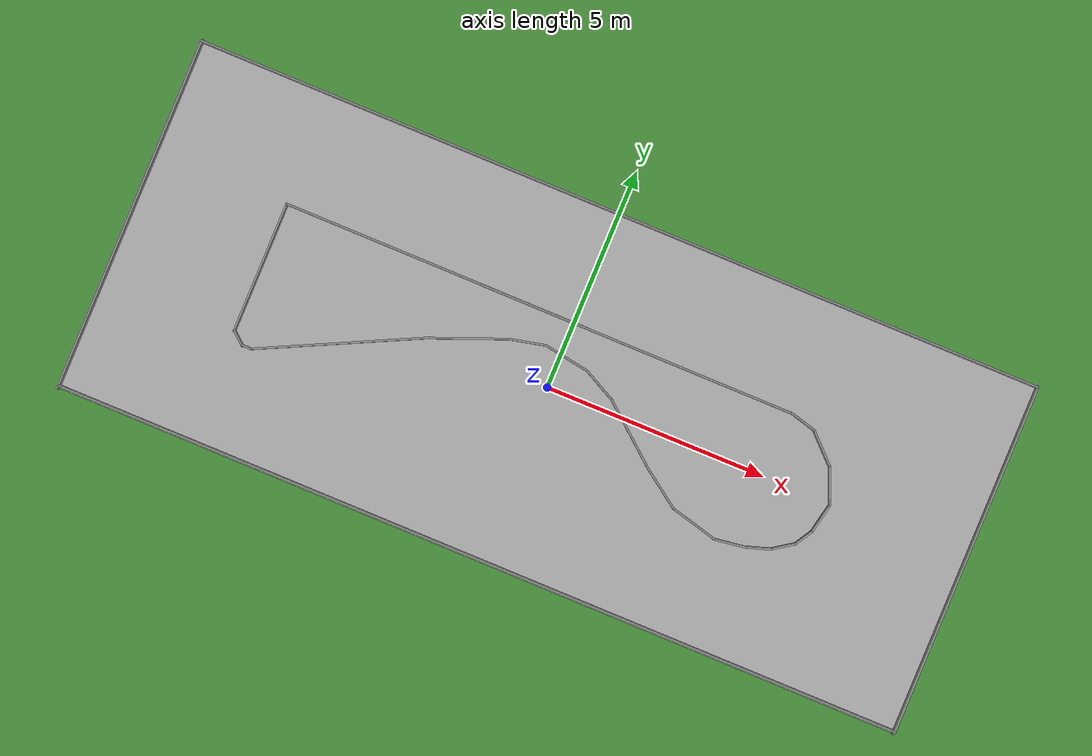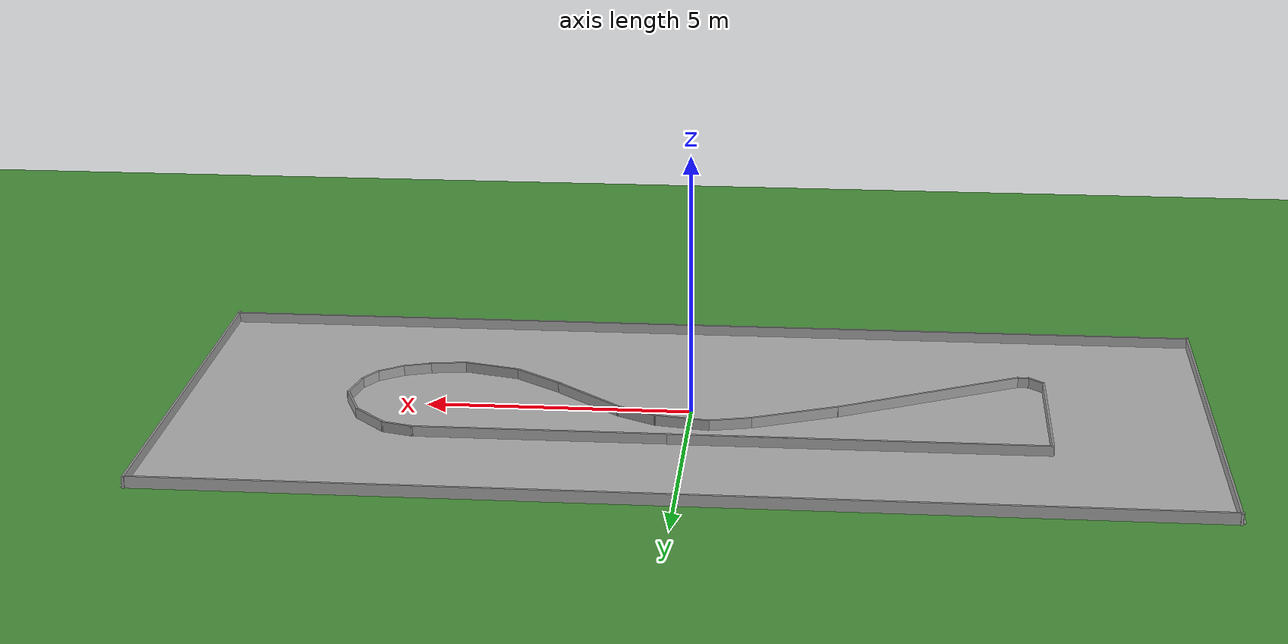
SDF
<sdf version="1.5">
 <world name="default">
  <light name="sun" type="directional">
   <cast_shadows>0</cast_shadows>
   <pose>0 0 10 0 -0 0</pose>
   <diffuse>0.8 0.8 0.8 1</diffuse>
   <specular>0.2 0.2 0.2 1</specular>
   <attenuation>
    <range>1000</range>
    <constant>0.9</constant>
    <linear>0.01</linear>
    <quadratic>0.001</quadratic>
   </attenuation>
   <direction>-0.5 0.1 -0.9</direction>
  </light>
  <scene>
   <sky><clouds><speed>1</speed></clouds></sky>
   <ambient>0.4 0.4 0.4 1</ambient>
   <background>0.7 0.7 0.7 1</background>
   <shadows>1</shadows>
  </scene>
  <physics name="default_physics" default="0" type="ode">
   <real_time_update_rate>1000</real_time_update_rate>
   <ode>
    <solver>
     <type>quick</type>
     <iters>70</iters>
     <sor>1.3</sor>
     <use_dynamic_moi_rescaling>0</use_dynamic_moi_rescaling>
    </solver>
    <constraints>
     <cfm>0</cfm>
     <erp>0.2</erp>
     <contact_max_correcting_vel>100</contact_max_correcting_vel>
     <contact_surface_layer>0.001</contact_surface_layer>
    </constraints>
   </ode>
   <max_step_size>0.001</max_step_size>
   <real_time_factor>1</real_time_factor>
  </physics>
  <scene><ambient>0.4 0.4 0.4 1</ambient><background>0.7 0.7 0.7 1</background><shadows>1</shadows></scene>
  <spherical_coordinates>
   <surface_model>EARTH_WGS84</surface_model>
   <latitude_deg>0</latitude_deg>
   <longitude_deg>0</longitude_deg>
   <elevation>0</elevation>
   <heading_deg>0</heading_deg>
  </spherical_coordinates>
  <model name="ground_grass">
   <static>1</static>
   <link name="ground_grass">
    <collision name="collision">
     <geometry><plane><normal>0 0 1</normal><size>50 50</size></plane></geometry>
     <surface><friction><ode><mu>100</mu><mu2>50</mu2></ode></friction></surface>
    </collision>
    <visual name="visual_ground">
     <cast_shadows>0</cast_shadows>
     <pose>0 0 0.005 0 -0 0</pose>
     <geometry><plane><normal>0 0 1</normal><size>50 50</size></plane></geometry>
     <material>
      <script>
       <uri>model://ground_grass/materials/scripts</uri>
       <uri>model://ground_grass/materials/textures</uri>
       <name>Floor/Grass</name>
      </script>
     </material>
    </visual>
    <velocity_decay><linear>0</linear><angular>0</angular></velocity_decay>
   </link>
  </model>
  <model name="ucsd_track_v1">
   <static>1</static>
   <link name="link_track">
    <collision name="collision">
     <geometry><plane><normal>0 0 1</normal><size>19.431 8.0264</size></plane></geometry>
     <surface><friction><ode><mu>100</mu><mu2>50</mu2></ode></friction></surface>
    </collision>
    <visual name="visual_ground">
     <cast_shadows>0</cast_shadows>
     <pose>0 0 0.005 0 -0 0</pose>
     <geometry><plane><normal>0 0 1</normal><size>19.431 8.0264</size></plane></geometry>
     <material>
      <script>
       <uri>model://ucsd_track_v1/materials/scripts</uri>
       <uri>model://ucsd_track_v1/materials/textures</uri>
       <name>Floor/Image</name>
      </script>
     </material>
    </visual>
    <velocity_decay><linear>0</linear><angular>0</angular></velocity_decay>
   </link>
   <pose>0 0 0.001 0 -0 0</pose>
  </model>
  <gravity>0 0 -9.8</gravity>
  <magnetic_field>6e-06 2.3e-05 -4.2e-05</magnetic_field>
  <atmosphere type="adiabatic"/>
  <model name="grey_wall_3">
   <link name="link">
    <pose>0.713484 -0.011654 1.4 0 -0 0</pose>
    <inertial>
     <inertia><ixx>nan</ixx><ixy>0</ixy><ixz>0</ixz><iyy>nan</iyy><iyz>0</iyz><izz>nan</izz></inertia>
     <mass>0</mass>
    </inertial>
    <visual name="visual">
     <cast_shadows>0</cast_shadows>
     <geometry><box><size>19.3332 0.043266 0.226147</size></box></geometry>
     <material>
      <script>
       <uri>model://grey_wall/materials/scripts</uri>
       <uri>model://grey_wall/materials/textures</uri>
       <name>vrc/grey_wall</name>
      </script>
      <ambient>1 1 1 1</ambient>
      <diffuse>1 1 1 1</diffuse>
      <specular>0 0 0 1</specular>
      <emissive>0 0 0 1</emissive>
     </material>
    </visual>
    <collision name="collision">
     <geometry><box><size>19.3332 0.043266 0.226147</size></box></geometry>
     <surface>
      <friction>
       <ode><mu>1</mu><mu2>1</mu2><fdir1>0 0 0</fdir1><slip1>0</slip1><slip2>0</slip2></ode>
       <torsional>
        <coefficient>1</coefficient>
        <patch_radius>0</patch_radius>
        <surface_radius>0</surface_radius>
        <use_patch_radius>1</use_patch_radius>
        <ode><slip>0</slip></ode>
       </torsional>
      </friction>
      <bounce><restitution_coefficient>0</restitution_coefficient><threshold>1e+06</threshold></bounce>
      <contact>
       <collide_without_contact>0</collide_without_contact>
       <collide_without_contact_bitmask>1</collide_without_contact_bitmask>
       <collide_bitmask>1</collide_bitmask>
       <ode>
        <soft_cfm>0</soft_cfm>
        <soft_erp>0.2</soft_erp>
        <kp>1e+13</kp>
        <kd>1</kd>
        <max_vel>0.01</max_vel>
        <min_depth>0</min_depth>
       </ode>
       <bullet>
        <split_impulse>1</split_impulse>
        <split_impulse_penetration_threshold>-0.01</split_impulse_penetration_threshold>
        <soft_cfm>0</soft_cfm>
        <soft_erp>0.2</soft_erp>
        <kp>1e+13</kp>
        <kd>1</kd>
       </bullet>
      </contact>
     </surface>
    </collision>
   </link>
   <static>1</static>
   <pose>-0.716038 4.0109 -1.30508 0 -0 0</pose>
  </model>
  <model name="grey_wall_4">
   <link name="link">
    <pose>0.713484 -0.011654 1.4 0 -0 0</pose>
    <inertial>
     <inertia><ixx>nan</ixx><ixy>0</ixy><ixz>0</ixz><iyy>nan</iyy><iyz>0</iyz><izz>nan</izz></inertia>
     <mass>0</mass>
    </inertial>
    <visual name="visual">
     <cast_shadows>0</cast_shadows>
     <geometry><box><size>19.3332 0.043266 0.226147</size></box></geometry>
     <material>
      <script>
       <uri>model://grey_wall/materials/scripts</uri>
       <uri>model://grey_wall/materials/textures</uri>
       <name>vrc/grey_wall</name>
      </script>
      <ambient>1 1 1 1</ambient>
      <diffuse>1 1 1 1</diffuse>
      <specular>0 0 0 1</specular>
      <emissive>0 0 0 1</emissive>
     </material>
    </visual>
    <collision name="collision">
     <geometry><box><size>19.3332 0.043266 0.226147</size></box></geometry>
     <surface>
      <friction>
       <ode><mu>1</mu><mu2>1</mu2><fdir1>0 0 0</fdir1><slip1>0</slip1><slip2>0</slip2></ode>
       <torsional>
        <coefficient>1</coefficient>
        <patch_radius>0</patch_radius>
        <surface_radius>0</surface_radius>
        <use_patch_radius>1</use_patch_radius>
        <ode><slip>0</slip></ode>
       </torsional>
      </friction>
      <bounce><restitution_coefficient>0</restitution_coefficient><threshold>1e+06</threshold></bounce>
      <contact>
       <collide_without_contact>0</collide_without_contact>
       <collide_without_contact_bitmask>1</collide_without_contact_bitmask>
       <collide_bitmask>1</collide_bitmask>
       <ode>
        <soft_cfm>0</soft_cfm>
        <soft_erp>0.2</soft_erp>
        <kp>1e+13</kp>
        <kd>1</kd>
        <max_vel>0.01</max_vel>
        <min_depth>0</min_depth>
       </ode>
       <bullet>
        <split_impulse>1</split_impulse>
        <split_impulse_penetration_threshold>-0.01</split_impulse_penetration_threshold>
        <soft_cfm>0</soft_cfm>
        <soft_erp>0.2</soft_erp>
        <kp>1e+13</kp>
        <kd>1</kd>
       </bullet>
      </contact>
     </surface>
    </collision>
   </link>
   <static>1</static>
   <pose>-0.701966 -3.93959 -1.30508 0 -0 0</pose>
  </model>
  <model name="grey_wall_5">
   <link name="link">
    <pose>-0.467859 -0.097477 1.4 0 -0 0.009516</pose>
    <inertial>
     <inertia><ixx>nan</ixx><ixy>0</ixy><ixz>0</ixz><iyy>nan</iyy><iyz>0</iyz><izz>nan</izz></inertia>
     <mass>0</mass>
    </inertial>
    <visual name="visual">
     <cast_shadows>0</cast_shadows>
     <geometry><box><size>8.07319 0.043266 0.226147</size></box></geometry>
     <material>
      <script>
       <uri>model://grey_wall/materials/scripts</uri>
       <uri>model://grey_wall/materials/textures</uri>
       <name>vrc/grey_wall</name>
      </script>
      <ambient>1 1 1 1</ambient>
      <diffuse>1 1 1 1</diffuse>
      <specular>0 0 0 1</specular>
      <emissive>0 0 0 1</emissive>
     </material>
    </visual>
    <collision name="collision">
     <geometry><box><size>8.07319 0.043266 0.226147</size></box></geometry>
     <surface>
      <friction>
       <ode><mu>1</mu><mu2>1</mu2><fdir1>0 0 0</fdir1><slip1>0</slip1><slip2>0</slip2></ode>
       <torsional>
        <coefficient>1</coefficient>
        <patch_radius>0</patch_radius>
        <surface_radius>0</surface_radius>
        <use_patch_radius>1</use_patch_radius>
        <ode><slip>0</slip></ode>
       </torsional>
      </friction>
      <bounce><restitution_coefficient>0</restitution_coefficient><threshold>1e+06</threshold></bounce>
      <contact>
       <collide_without_contact>0</collide_without_contact>
       <collide_without_contact_bitmask>1</collide_without_contact_bitmask>
       <collide_bitmask>1</collide_bitmask>
       <ode>
        <soft_cfm>0</soft_cfm>
        <soft_erp>0.2</soft_erp>
        <kp>1e+13</kp>
        <kd>1</kd>
        <max_vel>0.01</max_vel>
        <min_depth>0</min_depth>
       </ode>
       <bullet>
        <split_impulse>1</split_impulse>
        <split_impulse_penetration_threshold>-0.01</split_impulse_penetration_threshold>
        <soft_cfm>0</soft_cfm>
        <soft_erp>0.2</soft_erp>
        <kp>1e+13</kp>
        <kd>1</kd>
       </bullet>
      </contact>
     </surface>
    </collision>
   </link>
   <static>1</static>
   <pose>-9.73387 0.474906 -1.30963 0 -0 1.55954</pose>
  </model>
  <model name="grey_wall_6">
   <link name="link">
    <pose>-0.467859 -0.097477 1.4 0 -0 0.009516</pose>
    <inertial>
     <inertia><ixx>nan</ixx><ixy>0</ixy><ixz>0</ixz><iyy>nan</iyy><iyz>0</iyz><izz>nan</izz></inertia>
     <mass>0</mass>
    </inertial>
    <visual name="visual">
     <cast_shadows>0</cast_shadows>
     <geometry><box><size>8.07319 0.043266 0.226147</size></box></geometry>
     <material>
      <script>
       <uri>model://grey_wall/materials/scripts</uri>
       <uri>model://grey_wall/materials/textures</uri>
       <name>vrc/grey_wall</name>
      </script>
      <ambient>1 1 1 1</ambient>
      <diffuse>1 1 1 1</diffuse>
      <specular>0 0 0 1</specular>
      <emissive>0 0 0 1</emissive>
     </material>
    </visual>
    <collision name="collision">
     <geometry><box><size>8.07319 0.043266 0.226147</size></box></geometry>
     <surface>
      <friction>
       <ode><mu>1</mu><mu2>1</mu2><fdir1>0 0 0</fdir1><slip1>0</slip1><slip2>0</slip2></ode>
       <torsional>
        <coefficient>1</coefficient>
        <patch_radius>0</patch_radius>
        <surface_radius>0</surface_radius>
        <use_patch_radius>1</use_patch_radius>
        <ode><slip>0</slip></ode>
       </torsional>
      </friction>
      <bounce><restitution_coefficient>0</restitution_coefficient><threshold>1e+06</threshold></bounce>
      <contact>
       <collide_without_contact>0</collide_without_contact>
       <collide_without_contact_bitmask>1</collide_without_contact_bitmask>
       <collide_bitmask>1</collide_bitmask>
       <ode>
        <soft_cfm>0</soft_cfm>
        <soft_erp>0.2</soft_erp>
        <kp>1e+13</kp>
        <kd>1</kd>
        <max_vel>0.01</max_vel>
        <min_depth>0</min_depth>
       </ode>
       <bullet>
        <split_impulse>1</split_impulse>
        <split_impulse_penetration_threshold>-0.01</split_impulse_penetration_threshold>
        <soft_cfm>0</soft_cfm>
        <soft_erp>0.2</soft_erp>
        <kp>1e+13</kp>
        <kd>1</kd>
       </bullet>
      </contact>
     </surface>
    </collision>
   </link>
   <static>1</static>
   <pose>9.55959 0.474995 -1.30963 0 -0 1.55954</pose>
  </model>
  <model name="grey_wall_30_0">
   <link name="link">
    <pose>0.244121 0.290643 1.4 0 0 -0.161294</pose>
    <inertial>
     <inertia><ixx>nan</ixx><ixy>0</ixy><ixz>0</ixz><iyy>nan</iyy><iyz>0</iyz><izz>nan</izz></inertia>
     <mass>0</mass>
    </inertial>
    <visual name="visual">
     <cast_shadows>0</cast_shadows>
     <geometry><box><size>1.0471 0.043266 0.226147</size></box></geometry>
     <material>
      <script>
       <uri>model://grey_wall/materials/scripts</uri>
       <uri>model://grey_wall/materials/textures</uri>
       <name>vrc/grey_wall</name>
      </script>
      <ambient>1 1 1 1</ambient>
      <diffuse>1 1 1 1</diffuse>
      <specular>0 0 0 1</specular>
      <emissive>0 0 0 1</emissive>
     </material>
    </visual>
    <collision name="collision">
     <geometry><box><size>1.0471 0.043266 0.226147</size></box></geometry>
     <surface>
      <friction>
       <ode><mu>1</mu><mu2>1</mu2><fdir1>0 0 0</fdir1><slip1>0</slip1><slip2>0</slip2></ode>
       <torsional>
        <coefficient>1</coefficient>
        <patch_radius>0</patch_radius>
        <surface_radius>0</surface_radius>
        <use_patch_radius>1</use_patch_radius>
        <ode><slip>0</slip></ode>
       </torsional>
      </friction>
      <bounce><restitution_coefficient>0</restitution_coefficient><threshold>1e+06</threshold></bounce>
      <contact>
       <collide_without_contact>0</collide_without_contact>
       <collide_without_contact_bitmask>1</collide_without_contact_bitmask>
       <collide_bitmask>1</collide_bitmask>
       <ode>
        <soft_cfm>0</soft_cfm>
        <soft_erp>0.2</soft_erp>
        <kp>1e+13</kp>
        <kd>1</kd>
        <max_vel>0.01</max_vel>
        <min_depth>0</min_depth>
       </ode>
       <bullet>
        <split_impulse>1</split_impulse>
        <split_impulse_penetration_threshold>-0.01</split_impulse_penetration_threshold>
        <soft_cfm>0</soft_cfm>
        <soft_erp>0.2</soft_erp>
        <kp>1e+13</kp>
        <kd>1</kd>
       </bullet>
      </contact>
     </surface>
    </collision>
   </link>
   <static>1</static>
   <pose>-0.114316 0.442475 -1.30539 0 -0 0</pose>
  </model>
  <model name="grey_wall_t_26">
   <link name="link">
    <pose>0.75561 0.477652 1.4 0 -0 0.222578</pose>
    <inertial>
     <inertia><ixx>nan</ixx><ixy>0</ixy><ixz>0</ixz><iyy>nan</iyy><iyz>0</iyz><izz>nan</izz></inertia>
     <mass>0</mass>
    </inertial>
    <visual name="visual">
     <cast_shadows>0</cast_shadows>
     <geometry><box><size>0.800766 0.043266 0.226147</size></box></geometry>
     <material>
      <script>
       <uri>model://grey_wall/materials/scripts</uri>
       <uri>model://grey_wall/materials/textures</uri>
       <name>vrc/grey_wall</name>
      </script>
      <ambient>1 1 1 1</ambient>
      <diffuse>1 1 1 1</diffuse>
      <specular>0 0 0 1</specular>
      <emissive>0 0 0 1</emissive>
     </material>
    </visual>
    <collision name="collision">
     <geometry><box><size>0.800766 0.043266 0.226147</size></box></geometry>
     <surface>
      <friction>
       <ode><mu>1</mu><mu2>1</mu2><fdir1>0 0 0</fdir1><slip1>0</slip1><slip2>0</slip2></ode>
       <torsional>
        <coefficient>1</coefficient>
        <patch_radius>0</patch_radius>
        <surface_radius>0</surface_radius>
        <use_patch_radius>1</use_patch_radius>
        <ode><slip>0</slip></ode>
       </torsional>
      </friction>
      <bounce><restitution_coefficient>0</restitution_coefficient><threshold>1e+06</threshold></bounce>
      <contact>
       <collide_without_contact>0</collide_without_contact>
       <collide_without_contact_bitmask>1</collide_without_contact_bitmask>
       <collide_bitmask>1</collide_bitmask>
       <ode>
        <soft_cfm>0</soft_cfm>
        <soft_erp>0.2</soft_erp>
        <kp>1e+13</kp>
        <kd>1</kd>
        <max_vel>0.01</max_vel>
        <min_depth>0</min_depth>
       </ode>
       <bullet>
        <split_impulse>1</split_impulse>
        <split_impulse_penetration_threshold>-0.01</split_impulse_penetration_threshold>
        <soft_cfm>0</soft_cfm>
        <soft_erp>0.2</soft_erp>
        <kp>1e+13</kp>
        <kd>1</kd>
       </bullet>
      </contact>
     </surface>
    </collision>
   </link>
   <static>1</static>
   <pose>-1.52613 0.248203 -1.30539 0 -0 0</pose>
  </model>
  <model name="grey_wall_t_27">
   <link name="link">
    <pose>0.119904 0.340107 1.4 0 -0 0.379695</pose>
    <inertial>
     <inertia><ixx>nan</ixx><ixy>0</ixy><ixz>0</ixz><iyy>nan</iyy><iyz>0</iyz><izz>nan</izz></inertia>
     <mass>0</mass>
    </inertial>
    <visual name="visual">
     <cast_shadows>0</cast_shadows>
     <geometry><box><size>1.72288 0.043266 0.226147</size></box></geometry>
     <material>
      <script>
       <uri>model://grey_wall/materials/scripts</uri>
       <uri>model://grey_wall/materials/textures</uri>
       <name>vrc/grey_wall</name>
      </script>
      <ambient>1 1 1 1</ambient>
      <diffuse>1 1 1 1</diffuse>
      <specular>0 0 0 1</specular>
      <emissive>0 0 0 1</emissive>
     </material>
    </visual>
    <collision name="collision">
     <geometry><box><size>1.72288 0.043266 0.226147</size></box></geometry>
     <surface>
      <friction>
       <ode><mu>1</mu><mu2>1</mu2><fdir1>0 0 0</fdir1><slip1>0</slip1><slip2>0</slip2></ode>
       <torsional>
        <coefficient>1</coefficient>
        <patch_radius>0</patch_radius>
        <surface_radius>0</surface_radius>
        <use_patch_radius>1</use_patch_radius>
        <ode><slip>0</slip></ode>
       </torsional>
      </friction>
      <bounce><restitution_coefficient>0</restitution_coefficient><threshold>1e+06</threshold></bounce>
      <contact>
       <collide_without_contact>0</collide_without_contact>
       <collide_without_contact_bitmask>1</collide_without_contact_bitmask>
       <collide_bitmask>1</collide_bitmask>
       <ode>
        <soft_cfm>0</soft_cfm>
        <soft_erp>0.2</soft_erp>
        <kp>1e+13</kp>
        <kd>1</kd>
        <max_vel>0.01</max_vel>
        <min_depth>0</min_depth>
       </ode>
       <bullet>
        <split_impulse>1</split_impulse>
        <split_impulse_penetration_threshold>-0.01</split_impulse_penetration_threshold>
        <soft_cfm>0</soft_cfm>
        <soft_erp>0.2</soft_erp>
        <kp>1e+13</kp>
        <kd>1</kd>
       </bullet>
      </contact>
     </surface>
    </collision>
   </link>
   <static>1</static>
   <pose>-2.07457 -0.020126 -1.30331 0 -0 0</pose>
  </model>
  <model name="grey_wall_t_25">
   <link name="link">
    <pose>0.052738 0.386118 1.4 0 -0 0.455224</pose>
    <inertial>
     <inertia><ixx>nan</ixx><ixy>0</ixy><ixz>0</ixz><iyy>nan</iyy><iyz>0</iyz><izz>nan</izz></inertia>
     <mass>0</mass>
    </inertial>
    <visual name="visual">
     <cast_shadows>0</cast_shadows>
     <geometry><box><size>3.81606 0.043266 0.226147</size></box></geometry>
     <material>
      <script>
       <uri>model://grey_wall/materials/scripts</uri>
       <uri>model://grey_wall/materials/textures</uri>
       <name>vrc/grey_wall</name>
      </script>
      <ambient>1 1 1 1</ambient>
      <diffuse>1 1 1 1</diffuse>
      <specular>0 0 0 1</specular>
      <emissive>0 0 0 1</emissive>
     </material>
    </visual>
    <collision name="collision">
     <geometry><box><size>3.81606 0.043266 0.226147</size></box></geometry>
     <surface>
      <friction>
       <ode><mu>1</mu><mu2>1</mu2><fdir1>0 0 0</fdir1><slip1>0</slip1><slip2>0</slip2></ode>
       <torsional>
        <coefficient>1</coefficient>
        <patch_radius>0</patch_radius>
        <surface_radius>0</surface_radius>
        <use_patch_radius>1</use_patch_radius>
        <ode><slip>0</slip></ode>
       </torsional>
      </friction>
      <bounce><restitution_coefficient>0</restitution_coefficient><threshold>1e+06</threshold></bounce>
      <contact>
       <collide_without_contact>0</collide_without_contact>
       <collide_without_contact_bitmask>1</collide_without_contact_bitmask>
       <collide_bitmask>1</collide_bitmask>
       <ode>
        <soft_cfm>0</soft_cfm>
        <soft_erp>0.2</soft_erp>
        <kp>1e+13</kp>
        <kd>1</kd>
        <max_vel>0.01</max_vel>
        <min_depth>0</min_depth>
       </ode>
       <bullet>
        <split_impulse>1</split_impulse>
        <split_impulse_penetration_threshold>-0.01</split_impulse_penetration_threshold>
        <soft_cfm>0</soft_cfm>
        <soft_erp>0.2</soft_erp>
        <kp>1e+13</kp>
        <kd>1</kd>
       </bullet>
      </contact>
     </surface>
    </collision>
   </link>
   <static>1</static>
   <pose>-4.49945 -1.20909 -1.30331 0 -0 0</pose>
  </model>
  <model name="grey_wall_t_44">
   <link name="link">
    <pose>0.172532 0.379524 1.4 0 0 -0.01029</pose>
    <inertial>
     <inertia><ixx>nan</ixx><ixy>0</ixy><ixz>0</ixz><iyy>nan</iyy><iyz>0</iyz><izz>nan</izz></inertia>
     <mass>0</mass>
    </inertial>
    <visual name="visual">
     <cast_shadows>0</cast_shadows>
     <geometry><box><size>0.231964 0.043266 0.226147</size></box></geometry>
     <material>
      <script>
       <uri>model://grey_wall/materials/scripts</uri>
       <uri>model://grey_wall/materials/textures</uri>
       <name>vrc/grey_wall</name>
      </script>
      <ambient>1 1 1 1</ambient>
      <diffuse>1 1 1 1</diffuse>
      <specular>0 0 0 1</specular>
      <emissive>0 0 0 1</emissive>
     </material>
    </visual>
    <collision name="collision">
     <geometry><box><size>0.231964 0.043266 0.226147</size></box></geometry>
     <surface>
      <friction>
       <ode><mu>1</mu><mu2>1</mu2><fdir1>0 0 0</fdir1><slip1>0</slip1><slip2>0</slip2></ode>
       <torsional>
        <coefficient>1</coefficient>
        <patch_radius>0</patch_radius>
        <surface_radius>0</surface_radius>
        <use_patch_radius>1</use_patch_radius>
        <ode><slip>0</slip></ode>
       </torsional>
      </friction>
      <bounce><restitution_coefficient>0</restitution_coefficient><threshold>1e+06</threshold></bounce>
      <contact>
       <collide_without_contact>0</collide_without_contact>
       <collide_without_contact_bitmask>1</collide_without_contact_bitmask>
       <collide_bitmask>1</collide_bitmask>
       <ode>
        <soft_cfm>0</soft_cfm>
        <soft_erp>0.2</soft_erp>
        <kp>1e+13</kp>
        <kd>1</kd>
        <max_vel>0.01</max_vel>
        <min_depth>0</min_depth>
       </ode>
       <bullet>
        <split_impulse>1</split_impulse>
        <split_impulse_penetration_threshold>-0.01</split_impulse_penetration_threshold>
        <soft_cfm>0</soft_cfm>
        <soft_erp>0.2</soft_erp>
        <kp>1e+13</kp>
        <kd>1</kd>
       </bullet>
      </contact>
     </surface>
    </collision>
   </link>
   <static>1</static>
   <pose>-6.43024 -2.03922 -1.30539 0 -0 0</pose>
  </model>
  <model name="grey_wall_t_17">
   <link name="link">
    <pose>-0.003902 -0.430375 1.4 0 -0 0</pose>
    <inertial>
     <inertia><ixx>nan</ixx><ixy>0</ixy><ixz>0</ixz><iyy>nan</iyy><iyz>0</iyz><izz>nan</izz></inertia>
     <mass>0</mass>
    </inertial>
    <visual name="visual">
     <cast_shadows>0</cast_shadows>
     <geometry><box><size>7.20978 0.043266 0.226147</size></box></geometry>
     <material>
      <script>
       <uri>model://grey_wall/materials/scripts</uri>
       <uri>model://grey_wall/materials/textures</uri>
       <name>vrc/grey_wall</name>
      </script>
      <ambient>1 1 1 1</ambient>
      <diffuse>1 1 1 1</diffuse>
      <specular>0 0 0 1</specular>
      <emissive>0 0 0 1</emissive>
     </material>
    </visual>
    <collision name="collision">
     <geometry><box><size>7.20978 0.043266 0.226147</size></box></geometry>
     <surface>
      <friction>
       <ode><mu>1</mu><mu2>1</mu2><fdir1>0 0 0</fdir1><slip1>0</slip1><slip2>0</slip2></ode>
       <torsional>
        <coefficient>1</coefficient>
        <patch_radius>0</patch_radius>
        <surface_radius>0</surface_radius>
        <use_patch_radius>1</use_patch_radius>
        <ode><slip>0</slip></ode>
       </torsional>
      </friction>
      <bounce><restitution_coefficient>0</restitution_coefficient><threshold>1e+06</threshold></bounce>
      <contact>
       <collide_without_contact>0</collide_without_contact>
       <collide_without_contact_bitmask>1</collide_without_contact_bitmask>
       <collide_bitmask>1</collide_bitmask>
       <ode>
        <soft_cfm>0</soft_cfm>
        <soft_erp>0.2</soft_erp>
        <kp>1e+13</kp>
        <kd>1</kd>
        <max_vel>0.01</max_vel>
        <min_depth>0</min_depth>
       </ode>
       <bullet>
        <split_impulse>1</split_impulse>
        <split_impulse_penetration_threshold>-0.01</split_impulse_penetration_threshold>
        <soft_cfm>0</soft_cfm>
        <soft_erp>0.2</soft_erp>
        <kp>1e+13</kp>
        <kd>1</kd>
       </bullet>
      </contact>
     </surface>
    </collision>
   </link>
   <static>1</static>
   <pose>1.44796 1.9115 -1.30759 0 -0 0</pose>
  </model>
  <model name="grey_wall_t_45">
   <link name="link">
    <pose>0.434772 0.412091 1.4 0 0 -0.716202</pose>
    <inertial>
     <inertia><ixx>nan</ixx><ixy>0</ixy><ixz>0</ixz><iyy>nan</iyy><iyz>0</iyz><izz>nan</izz></inertia>
     <mass>0</mass>
    </inertial>
    <visual name="visual">
     <cast_shadows>0</cast_shadows>
     <geometry><box><size>0.396293 0.043266 0.226147</size></box></geometry>
     <material>
      <script>
       <uri>model://grey_wall/materials/scripts</uri>
       <uri>model://grey_wall/materials/textures</uri>
       <name>vrc/grey_wall</name>
      </script>
      <ambient>1 1 1 1</ambient>
      <diffuse>1 1 1 1</diffuse>
      <specular>0 0 0 1</specular>
      <emissive>0 0 0 1</emissive>
     </material>
    </visual>
    <collision name="collision">
     <geometry><box><size>0.396293 0.043266 0.226147</size></box></geometry>
     <surface>
      <friction>
       <ode><mu>1</mu><mu2>1</mu2><fdir1>0 0 0</fdir1><slip1>0</slip1><slip2>0</slip2></ode>
       <torsional>
        <coefficient>1</coefficient>
        <patch_radius>0</patch_radius>
        <surface_radius>0</surface_radius>
        <use_patch_radius>1</use_patch_radius>
        <ode><slip>0</slip></ode>
       </torsional>
      </friction>
      <bounce><restitution_coefficient>0</restitution_coefficient><threshold>1e+06</threshold></bounce>
      <contact>
       <collide_without_contact>0</collide_without_contact>
       <collide_without_contact_bitmask>1</collide_without_contact_bitmask>
       <collide_bitmask>1</collide_bitmask>
       <ode>
        <soft_cfm>0</soft_cfm>
        <soft_erp>0.2</soft_erp>
        <kp>1e+13</kp>
        <kd>1</kd>
        <max_vel>0.01</max_vel>
        <min_depth>0</min_depth>
       </ode>
       <bullet>
        <split_impulse>1</split_impulse>
        <split_impulse_penetration_threshold>-0.01</split_impulse_penetration_threshold>
        <soft_cfm>0</soft_cfm>
        <soft_erp>0.2</soft_erp>
        <kp>1e+13</kp>
        <kd>1</kd>
       </bullet>
      </contact>
     </surface>
    </collision>
   </link>
   <static>1</static>
   <pose>-6.93206 -1.9655 -1.30539 0 -0 0</pose>
  </model>
  <model name="grey_wall_t_41">
   <link name="link">
    <pose>0.09526 -0.407764 1.4 0 -0 0.009516</pose>
    <inertial>
     <inertia><ixx>nan</ixx><ixy>0</ixy><ixz>0</ixz><iyy>nan</iyy><iyz>0</iyz><izz>nan</izz></inertia>
     <mass>0</mass>
    </inertial>
    <visual name="visual">
     <cast_shadows>0</cast_shadows>
     <geometry><box><size>2.96726 0.043266 0.226147</size></box></geometry>
     <material>
      <script>
       <uri>model://grey_wall/materials/scripts</uri>
       <uri>model://grey_wall/materials/textures</uri>
       <name>vrc/grey_wall</name>
      </script>
      <ambient>1 1 1 1</ambient>
      <diffuse>1 1 1 1</diffuse>
      <specular>0 0 0 1</specular>
      <emissive>0 0 0 1</emissive>
     </material>
    </visual>
    <collision name="collision">
     <geometry><box><size>2.96726 0.043266 0.226147</size></box></geometry>
     <surface>
      <friction>
       <ode><mu>1</mu><mu2>1</mu2><fdir1>0 0 0</fdir1><slip1>0</slip1><slip2>0</slip2></ode>
       <torsional>
        <coefficient>1</coefficient>
        <patch_radius>0</patch_radius>
        <surface_radius>0</surface_radius>
        <use_patch_radius>1</use_patch_radius>
        <ode><slip>0</slip></ode>
       </torsional>
      </friction>
      <bounce><restitution_coefficient>0</restitution_coefficient><threshold>1e+06</threshold></bounce>
      <contact>
       <collide_without_contact>0</collide_without_contact>
       <collide_without_contact_bitmask>1</collide_without_contact_bitmask>
       <collide_bitmask>1</collide_bitmask>
       <ode>
        <soft_cfm>0</soft_cfm>
        <soft_erp>0.2</soft_erp>
        <kp>1e+13</kp>
        <kd>1</kd>
        <max_vel>0.01</max_vel>
        <min_depth>0</min_depth>
       </ode>
       <bullet>
        <split_impulse>1</split_impulse>
        <split_impulse_penetration_threshold>-0.01</split_impulse_penetration_threshold>
        <soft_cfm>0</soft_cfm>
        <soft_erp>0.2</soft_erp>
        <kp>1e+13</kp>
        <kd>1</kd>
       </bullet>
      </contact>
     </surface>
    </collision>
   </link>
   <static>1</static>
   <pose>-7.0448 -0.073707 -1.30963 0 -0 1.55954</pose>
  </model>
  <model name="grey_wall_t_16_0">
   <link name="link">
    <pose>-0.003115 -0.433128 1.4 0 -0 0</pose>
    <inertial>
     <inertia><ixx>nan</ixx><ixy>0</ixy><ixz>0</ixz><iyy>nan</iyy><iyz>0</iyz><izz>nan</izz></inertia>
     <mass>0</mass>
    </inertial>
    <visual name="visual">
     <cast_shadows>0</cast_shadows>
     <geometry><box><size>6.98046 0.043266 0.226147</size></box></geometry>
     <material>
      <script>
       <uri>model://grey_wall/materials/scripts</uri>
       <uri>model://grey_wall/materials/textures</uri>
       <name>vrc/grey_wall</name>
      </script>
      <ambient>1 1 1 1</ambient>
      <diffuse>1 1 1 1</diffuse>
      <specular>0 0 0 1</specular>
      <emissive>0 0 0 1</emissive>
     </material>
    </visual>
    <collision name="collision">
     <geometry><box><size>6.98046 0.043266 0.226147</size></box></geometry>
     <surface>
      <friction>
       <ode><mu>1</mu><mu2>1</mu2><fdir1>0 0 0</fdir1><slip1>0</slip1><slip2>0</slip2></ode>
       <torsional>
        <coefficient>1</coefficient>
        <patch_radius>0</patch_radius>
        <surface_radius>0</surface_radius>
        <use_patch_radius>1</use_patch_radius>
        <ode><slip>0</slip></ode>
       </torsional>
      </friction>
      <bounce><restitution_coefficient>0</restitution_coefficient><threshold>1e+06</threshold></bounce>
      <contact>
       <collide_without_contact>0</collide_without_contact>
       <collide_without_contact_bitmask>1</collide_without_contact_bitmask>
       <collide_bitmask>1</collide_bitmask>
       <ode>
        <soft_cfm>0</soft_cfm>
        <soft_erp>0.2</soft_erp>
        <kp>1e+13</kp>
        <kd>1</kd>
        <max_vel>0.01</max_vel>
        <min_depth>0</min_depth>
       </ode>
       <bullet>
        <split_impulse>1</split_impulse>
        <split_impulse_penetration_threshold>-0.01</split_impulse_penetration_threshold>
        <soft_cfm>0</soft_cfm>
        <soft_erp>0.2</soft_erp>
        <kp>1e+13</kp>
        <kd>1</kd>
       </bullet>
      </contact>
     </surface>
    </collision>
   </link>
   <static>1</static>
   <pose>-3.148 1.91993 -1.30759 0 -0 0</pose>
  </model>
  <model name="grey_wall_t_29">
   <link name="link">
    <pose>0.566729 0.178563 1.4 0 0 -0.470145</pose>
    <inertial>
     <inertia><ixx>nan</ixx><ixy>0</ixy><ixz>0</ixz><iyy>nan</iyy><iyz>0</iyz><izz>nan</izz></inertia>
     <mass>0</mass>
    </inertial>
    <visual name="visual">
     <cast_shadows>0</cast_shadows>
     <geometry><box><size>0.850335 0.043266 0.226147</size></box></geometry>
     <material>
      <script>
       <uri>model://grey_wall/materials/scripts</uri>
       <uri>model://grey_wall/materials/textures</uri>
       <name>vrc/grey_wall</name>
      </script>
      <ambient>1 1 1 1</ambient>
      <diffuse>1 1 1 1</diffuse>
      <specular>0 0 0 1</specular>
      <emissive>0 0 0 1</emissive>
     </material>
    </visual>
    <collision name="collision">
     <geometry><box><size>0.850335 0.043266 0.226147</size></box></geometry>
     <surface>
      <friction>
       <ode><mu>1</mu><mu2>1</mu2><fdir1>0 0 0</fdir1><slip1>0</slip1><slip2>0</slip2></ode>
       <torsional>
        <coefficient>1</coefficient>
        <patch_radius>0</patch_radius>
        <surface_radius>0</surface_radius>
        <use_patch_radius>1</use_patch_radius>
        <ode><slip>0</slip></ode>
       </torsional>
      </friction>
      <bounce><restitution_coefficient>0</restitution_coefficient><threshold>1e+06</threshold></bounce>
      <contact>
       <collide_without_contact>0</collide_without_contact>
       <collide_without_contact_bitmask>1</collide_without_contact_bitmask>
       <collide_bitmask>1</collide_bitmask>
       <ode>
        <soft_cfm>0</soft_cfm>
        <soft_erp>0.2</soft_erp>
        <kp>1e+13</kp>
        <kd>1</kd>
        <max_vel>0.01</max_vel>
        <min_depth>0</min_depth>
       </ode>
       <bullet>
        <split_impulse>1</split_impulse>
        <split_impulse_penetration_threshold>-0.01</split_impulse_penetration_threshold>
        <soft_cfm>0</soft_cfm>
        <soft_erp>0.2</soft_erp>
        <kp>1e+13</kp>
        <kd>1</kd>
       </bullet>
      </contact>
     </surface>
    </collision>
   </link>
   <static>1</static>
   <pose>0.423351 0.292484 -1.30552 0 -0 0</pose>
  </model>
  <model name="grey_wall_t_28">
   <link name="link">
    <pose>0.044922 0.414752 1.4 0 0 -0.690491</pose>
    <inertial>
     <inertia><ixx>nan</ixx><ixy>0</ixy><ixz>0</ixz><iyy>nan</iyy><iyz>0</iyz><izz>nan</izz></inertia>
     <mass>0</mass>
    </inertial>
    <visual name="visual">
     <cast_shadows>0</cast_shadows>
     <geometry><box><size>1.62445 0.043266 0.226147</size></box></geometry>
     <material>
      <script>
       <uri>model://grey_wall/materials/scripts</uri>
       <uri>model://grey_wall/materials/textures</uri>
       <name>vrc/grey_wall</name>
      </script>
      <ambient>1 1 1 1</ambient>
      <diffuse>1 1 1 1</diffuse>
      <specular>0 0 0 1</specular>
      <emissive>0 0 0 1</emissive>
     </material>
    </visual>
    <collision name="collision">
     <geometry><box><size>1.62445 0.043266 0.226147</size></box></geometry>
     <surface>
      <friction>
       <ode><mu>1</mu><mu2>1</mu2><fdir1>0 0 0</fdir1><slip1>0</slip1><slip2>0</slip2></ode>
       <torsional>
        <coefficient>1</coefficient>
        <patch_radius>0</patch_radius>
        <surface_radius>0</surface_radius>
        <use_patch_radius>1</use_patch_radius>
        <ode><slip>0</slip></ode>
       </torsional>
      </friction>
      <bounce><restitution_coefficient>0</restitution_coefficient><threshold>1e+06</threshold></bounce>
      <contact>
       <collide_without_contact>0</collide_without_contact>
       <collide_without_contact_bitmask>1</collide_without_contact_bitmask>
       <collide_bitmask>1</collide_bitmask>
       <ode>
        <soft_cfm>0</soft_cfm>
        <soft_erp>0.2</soft_erp>
        <kp>1e+13</kp>
        <kd>1</kd>
        <max_vel>0.01</max_vel>
        <min_depth>0</min_depth>
       </ode>
       <bullet>
        <split_impulse>1</split_impulse>
        <split_impulse_penetration_threshold>-0.01</split_impulse_penetration_threshold>
        <soft_cfm>0</soft_cfm>
        <soft_erp>0.2</soft_erp>
        <kp>1e+13</kp>
        <kd>1</kd>
       </bullet>
      </contact>
     </surface>
    </collision>
   </link>
   <static>1</static>
   <pose>1.9243 -0.636533 -1.30469 0 -0 0</pose>
  </model>
  <model name="grey_wall_t_31">
   <link name="link">
    <pose>-0.145463 0.479394 1.4 0 0 -0.613938</pose>
    <inertial>
     <inertia><ixx>nan</ixx><ixy>0</ixy><ixz>0</ixz><iyy>nan</iyy><iyz>0</iyz><izz>nan</izz></inertia>
     <mass>0</mass>
    </inertial>
    <visual name="visual">
     <cast_shadows>0</cast_shadows>
     <geometry><box><size>1.13903 0.043266 0.226147</size></box></geometry>
     <material>
      <script>
       <uri>model://grey_wall/materials/scripts</uri>
       <uri>model://grey_wall/materials/textures</uri>
       <name>vrc/grey_wall</name>
      </script>
      <ambient>1 1 1 1</ambient>
      <diffuse>1 1 1 1</diffuse>
      <specular>0 0 0 1</specular>
      <emissive>0 0 0 1</emissive>
     </material>
    </visual>
    <collision name="collision">
     <geometry><box><size>1.13903 0.043266 0.226147</size></box></geometry>
     <surface>
      <friction>
       <ode><mu>1</mu><mu2>1</mu2><fdir1>0 0 0</fdir1><slip1>0</slip1><slip2>0</slip2></ode>
       <torsional>
        <coefficient>1</coefficient>
        <patch_radius>0</patch_radius>
        <surface_radius>0</surface_radius>
        <use_patch_radius>1</use_patch_radius>
        <ode><slip>0</slip></ode>
       </torsional>
      </friction>
      <bounce><restitution_coefficient>0</restitution_coefficient><threshold>1e+06</threshold></bounce>
      <contact>
       <collide_without_contact>0</collide_without_contact>
       <collide_without_contact_bitmask>1</collide_without_contact_bitmask>
       <collide_bitmask>1</collide_bitmask>
       <ode>
        <soft_cfm>0</soft_cfm>
        <soft_erp>0.2</soft_erp>
        <kp>1e+13</kp>
        <kd>1</kd>
        <max_vel>0.01</max_vel>
        <min_depth>0</min_depth>
       </ode>
       <bullet>
        <split_impulse>1</split_impulse>
        <split_impulse_penetration_threshold>-0.01</split_impulse_penetration_threshold>
        <soft_cfm>0</soft_cfm>
        <soft_erp>0.2</soft_erp>
        <kp>1e+13</kp>
        <kd>1</kd>
       </bullet>
      </contact>
     </surface>
    </collision>
   </link>
   <static>1</static>
   <pose>3.16473 -1.52452 -1.30469 0 -0 0</pose>
  </model>
  <model name="grey_wall_t_59">
   <link name="link">
    <pose>-0.096533 0.502561 1.4 0 0 -0.246763</pose>
    <inertial>
     <inertia><ixx>nan</ixx><ixy>0</ixy><ixz>0</ixz><iyy>nan</iyy><iyz>0</iyz><izz>nan</izz></inertia>
     <mass>0</mass>
    </inertial>
    <visual name="visual">
     <cast_shadows>0</cast_shadows>
     <geometry><box><size>1.12853 0.043266 0.226147</size></box></geometry>
     <material>
      <script>
       <uri>model://grey_wall/materials/scripts</uri>
       <uri>model://grey_wall/materials/textures</uri>
       <name>vrc/grey_wall</name>
      </script>
      <ambient>1 1 1 1</ambient>
      <diffuse>1 1 1 1</diffuse>
      <specular>0 0 0 1</specular>
      <emissive>0 0 0 1</emissive>
     </material>
    </visual>
    <collision name="collision">
     <geometry><box><size>1.12853 0.043266 0.226147</size></box></geometry>
     <surface>
      <friction>
       <ode><mu>1</mu><mu2>1</mu2><fdir1>0 0 0</fdir1><slip1>0</slip1><slip2>0</slip2></ode>
       <torsional>
        <coefficient>1</coefficient>
        <patch_radius>0</patch_radius>
        <surface_radius>0</surface_radius>
        <use_patch_radius>1</use_patch_radius>
        <ode><slip>0</slip></ode>
       </torsional>
      </friction>
      <bounce><restitution_coefficient>0</restitution_coefficient><threshold>1e+06</threshold></bounce>
      <contact>
       <collide_without_contact>0</collide_without_contact>
       <collide_without_contact_bitmask>1</collide_without_contact_bitmask>
       <collide_bitmask>1</collide_bitmask>
       <ode>
        <soft_cfm>0</soft_cfm>
        <soft_erp>0.2</soft_erp>
        <kp>1e+13</kp>
        <kd>1</kd>
        <max_vel>0.01</max_vel>
        <min_depth>0</min_depth>
       </ode>
       <bullet>
        <split_impulse>1</split_impulse>
        <split_impulse_penetration_threshold>-0.01</split_impulse_penetration_threshold>
        <soft_cfm>0</soft_cfm>
        <soft_erp>0.2</soft_erp>
        <kp>1e+13</kp>
        <kd>1</kd>
       </bullet>
      </contact>
     </surface>
    </collision>
   </link>
   <static>1</static>
   <pose>4.09311 -1.99771 -1.30469 0 -0 0</pose>
  </model>
  <model name="grey_wall_t_57">
   <link name="link">
    <pose>0.2903 0.518054 1.4 0 -0 0.144434</pose>
    <inertial>
     <inertia><ixx>nan</ixx><ixy>0</ixy><ixz>0</ixz><iyy>nan</iyy><iyz>0</iyz><izz>nan</izz></inertia>
     <mass>0</mass>
    </inertial>
    <visual name="visual">
     <cast_shadows>0</cast_shadows>
     <geometry><box><size>0.755022 0.043266 0.226147</size></box></geometry>
     <material>
      <script>
       <uri>model://grey_wall/materials/scripts</uri>
       <uri>model://grey_wall/materials/textures</uri>
       <name>vrc/grey_wall</name>
      </script>
      <ambient>1 1 1 1</ambient>
      <diffuse>1 1 1 1</diffuse>
      <specular>0 0 0 1</specular>
      <emissive>0 0 0 1</emissive>
     </material>
    </visual>
    <collision name="collision">
     <geometry><box><size>0.755022 0.043266 0.226147</size></box></geometry>
     <surface>
      <friction>
       <ode><mu>1</mu><mu2>1</mu2><fdir1>0 0 0</fdir1><slip1>0</slip1><slip2>0</slip2></ode>
       <torsional>
        <coefficient>1</coefficient>
        <patch_radius>0</patch_radius>
        <surface_radius>0</surface_radius>
        <use_patch_radius>1</use_patch_radius>
        <ode><slip>0</slip></ode>
       </torsional>
      </friction>
      <bounce><restitution_coefficient>0</restitution_coefficient><threshold>1e+06</threshold></bounce>
      <contact>
       <collide_without_contact>0</collide_without_contact>
       <collide_without_contact_bitmask>1</collide_without_contact_bitmask>
       <collide_bitmask>1</collide_bitmask>
       <ode>
        <soft_cfm>0</soft_cfm>
        <soft_erp>0.2</soft_erp>
        <kp>1e+13</kp>
        <kd>1</kd>
        <max_vel>0.01</max_vel>
        <min_depth>0</min_depth>
       </ode>
       <bullet>
        <split_impulse>1</split_impulse>
        <split_impulse_penetration_threshold>-0.01</split_impulse_penetration_threshold>
        <soft_cfm>0</soft_cfm>
        <soft_erp>0.2</soft_erp>
        <kp>1e+13</kp>
        <kd>1</kd>
       </bullet>
      </contact>
     </surface>
    </collision>
   </link>
   <static>1</static>
   <pose>4.58267 -2.09908 -1.30469 0 -0 0</pose>
  </model>
  <model name="grey_wall_t_58">
   <link name="link">
    <pose>-0.064043 0.49011 1.4 0 -0 0.310417</pose>
    <inertial>
     <inertia><ixx>nan</ixx><ixy>0</ixy><ixz>0</ixz><iyy>nan</iyy><iyz>0</iyz><izz>nan</izz></inertia>
     <mass>0</mass>
    </inertial>
    <visual name="visual">
     <cast_shadows>0</cast_shadows>
     <geometry><box><size>0.553723 0.043266 0.226147</size></box></geometry>
     <material>
      <script>
       <uri>model://grey_wall/materials/scripts</uri>
       <uri>model://grey_wall/materials/textures</uri>
       <name>vrc/grey_wall</name>
      </script>
      <ambient>1 1 1 1</ambient>
      <diffuse>1 1 1 1</diffuse>
      <specular>0 0 0 1</specular>
      <emissive>0 0 0 1</emissive>
     </material>
    </visual>
    <collision name="collision">
     <geometry><box><size>0.553723 0.043266 0.226147</size></box></geometry>
     <surface>
      <friction>
       <ode><mu>1</mu><mu2>1</mu2><fdir1>0 0 0</fdir1><slip1>0</slip1><slip2>0</slip2></ode>
       <torsional>
        <coefficient>1</coefficient>
        <patch_radius>0</patch_radius>
        <surface_radius>0</surface_radius>
        <use_patch_radius>1</use_patch_radius>
        <ode><slip>0</slip></ode>
       </torsional>
      </friction>
      <bounce><restitution_coefficient>0</restitution_coefficient><threshold>1e+06</threshold></bounce>
      <contact>
       <collide_without_contact>0</collide_without_contact>
       <collide_without_contact_bitmask>1</collide_without_contact_bitmask>
       <collide_bitmask>1</collide_bitmask>
       <ode>
        <soft_cfm>0</soft_cfm>
        <soft_erp>0.2</soft_erp>
        <kp>1e+13</kp>
        <kd>1</kd>
        <max_vel>0.01</max_vel>
        <min_depth>0</min_depth>
       </ode>
       <bullet>
        <split_impulse>1</split_impulse>
        <split_impulse_penetration_threshold>-0.01</split_impulse_penetration_threshold>
        <soft_cfm>0</soft_cfm>
        <soft_erp>0.2</soft_erp>
        <kp>1e+13</kp>
        <kd>1</kd>
       </bullet>
      </contact>
     </surface>
    </collision>
   </link>
   <static>1</static>
   <pose>5.53718 -1.934 -1.30539 0 -0 0</pose>
  </model>
  <model name="grey_wall_t_56">
   <link name="link">
    <pose>0.24518 0.639413 1.4 0 -0 0.607244</pose>
    <inertial>
     <inertia><ixx>nan</ixx><ixy>0</ixy><ixz>0</ixz><iyy>nan</iyy><iyz>0</iyz><izz>nan</izz></inertia>
     <mass>0</mass>
    </inertial>
    <visual name="visual">
     <cast_shadows>0</cast_shadows>
     <geometry><box><size>0.572378 0.043266 0.226147</size></box></geometry>
     <material>
      <script>
       <uri>model://grey_wall/materials/scripts</uri>
       <uri>model://grey_wall/materials/textures</uri>
       <name>vrc/grey_wall</name>
      </script>
      <ambient>1 1 1 1</ambient>
      <diffuse>1 1 1 1</diffuse>
      <specular>0 0 0 1</specular>
      <emissive>0 0 0 1</emissive>
     </material>
    </visual>
    <collision name="collision">
     <geometry><box><size>0.572378 0.043266 0.226147</size></box></geometry>
     <surface>
      <friction>
       <ode><mu>1</mu><mu2>1</mu2><fdir1>0 0 0</fdir1><slip1>0</slip1><slip2>0</slip2></ode>
       <torsional>
        <coefficient>1</coefficient>
        <patch_radius>0</patch_radius>
        <surface_radius>0</surface_radius>
        <use_patch_radius>1</use_patch_radius>
        <ode><slip>0</slip></ode>
       </torsional>
      </friction>
      <bounce><restitution_coefficient>0</restitution_coefficient><threshold>1e+06</threshold></bounce>
      <contact>
       <collide_without_contact>0</collide_without_contact>
       <collide_without_contact_bitmask>1</collide_without_contact_bitmask>
       <collide_bitmask>1</collide_bitmask>
       <ode>
        <soft_cfm>0</soft_cfm>
        <soft_erp>0.2</soft_erp>
        <kp>1e+13</kp>
        <kd>1</kd>
        <max_vel>0.01</max_vel>
        <min_depth>0</min_depth>
       </ode>
       <bullet>
        <split_impulse>1</split_impulse>
        <split_impulse_penetration_threshold>-0.01</split_impulse_penetration_threshold>
        <soft_cfm>0</soft_cfm>
        <soft_erp>0.2</soft_erp>
        <kp>1e+13</kp>
        <kd>1</kd>
       </bullet>
      </contact>
     </surface>
    </collision>
   </link>
   <static>1</static>
   <pose>5.69053 -1.8541 -1.30539 0 -0 0</pose>
  </model>
  <model name="grey_wall_t_54">
   <link name="link">
    <pose>-0.069188 -0.423795 1.4 0 0 -0.260101</pose>
    <inertial>
     <inertia><ixx>nan</ixx><ixy>0</ixy><ixz>0</ixz><iyy>nan</iyy><iyz>0</iyz><izz>nan</izz></inertia>
     <mass>0</mass>
    </inertial>
    <visual name="visual">
     <cast_shadows>0</cast_shadows>
     <geometry><box><size>0.633914 0.043266 0.226147</size></box></geometry>
     <material>
      <script>
       <uri>model://grey_wall/materials/scripts</uri>
       <uri>model://grey_wall/materials/textures</uri>
       <name>vrc/grey_wall</name>
      </script>
      <ambient>1 1 1 1</ambient>
      <diffuse>1 1 1 1</diffuse>
      <specular>0 0 0 1</specular>
      <emissive>0 0 0 1</emissive>
     </material>
    </visual>
    <collision name="collision">
     <geometry><box><size>0.633914 0.043266 0.226147</size></box></geometry>
     <surface>
      <friction>
       <ode><mu>1</mu><mu2>1</mu2><fdir1>0 0 0</fdir1><slip1>0</slip1><slip2>0</slip2></ode>
       <torsional>
        <coefficient>1</coefficient>
        <patch_radius>0</patch_radius>
        <surface_radius>0</surface_radius>
        <use_patch_radius>1</use_patch_radius>
        <ode><slip>0</slip></ode>
       </torsional>
      </friction>
      <bounce><restitution_coefficient>0</restitution_coefficient><threshold>1e+06</threshold></bounce>
      <contact>
       <collide_without_contact>0</collide_without_contact>
       <collide_without_contact_bitmask>1</collide_without_contact_bitmask>
       <collide_bitmask>1</collide_bitmask>
       <ode>
        <soft_cfm>0</soft_cfm>
        <soft_erp>0.2</soft_erp>
        <kp>1e+13</kp>
        <kd>1</kd>
        <max_vel>0.01</max_vel>
        <min_depth>0</min_depth>
       </ode>
       <bullet>
        <split_impulse>1</split_impulse>
        <split_impulse_penetration_threshold>-0.01</split_impulse_penetration_threshold>
        <soft_cfm>0</soft_cfm>
        <soft_erp>0.2</soft_erp>
        <kp>1e+13</kp>
        <kd>1</kd>
       </bullet>
      </contact>
     </surface>
    </collision>
   </link>
   <static>1</static>
   <pose>5.38328 1.83136 -1.30469 0 -0 0</pose>
  </model>
  <model name="grey_wall_t_50">
   <link name="link">
    <pose>-0.278065 -0.771945 1.4 0 0 -0.772004</pose>
    <inertial>
     <inertia><ixx>nan</ixx><ixy>0</ixy><ixz>0</ixz><iyy>nan</iyy><iyz>0</iyz><izz>nan</izz></inertia>
     <mass>0</mass>
    </inertial>
    <visual name="visual">
     <cast_shadows>0</cast_shadows>
     <geometry><box><size>0.86914 0.043266 0.226147</size></box></geometry>
     <material>
      <script>
       <uri>model://grey_wall/materials/scripts</uri>
       <uri>model://grey_wall/materials/textures</uri>
       <name>vrc/grey_wall</name>
      </script>
      <ambient>1 1 1 1</ambient>
      <diffuse>1 1 1 1</diffuse>
      <specular>0 0 0 1</specular>
      <emissive>0 0 0 1</emissive>
     </material>
    </visual>
    <collision name="collision">
     <geometry><box><size>0.86914 0.043266 0.226147</size></box></geometry>
     <surface>
      <friction>
       <ode><mu>1</mu><mu2>1</mu2><fdir1>0 0 0</fdir1><slip1>0</slip1><slip2>0</slip2></ode>
       <torsional>
        <coefficient>1</coefficient>
        <patch_radius>0</patch_radius>
        <surface_radius>0</surface_radius>
        <use_patch_radius>1</use_patch_radius>
        <ode><slip>0</slip></ode>
       </torsional>
      </friction>
      <bounce><restitution_coefficient>0</restitution_coefficient><threshold>1e+06</threshold></bounce>
      <contact>
       <collide_without_contact>0</collide_without_contact>
       <collide_without_contact_bitmask>1</collide_without_contact_bitmask>
       <collide_bitmask>1</collide_bitmask>
       <ode>
        <soft_cfm>0</soft_cfm>
        <soft_erp>0.2</soft_erp>
        <kp>1e+13</kp>
        <kd>1</kd>
        <max_vel>0.01</max_vel>
        <min_depth>0</min_depth>
       </ode>
       <bullet>
        <split_impulse>1</split_impulse>
        <split_impulse_penetration_threshold>-0.01</split_impulse_penetration_threshold>
        <soft_cfm>0</soft_cfm>
        <soft_erp>0.2</soft_erp>
        <kp>1e+13</kp>
        <kd>1</kd>
       </bullet>
      </contact>
     </surface>
    </collision>
   </link>
   <static>1</static>
   <pose>6.17778 1.80909 -1.30539 0 -0 0</pose>
  </model>
  <model name="grey_wall_t_62_0">
   <link name="link">
    <pose>-0.119092 0.531101 1.4 0 -0 1.03064</pose>
    <inertial>
     <inertia><ixx>nan</ixx><ixy>0</ixy><ixz>0</ixz><iyy>nan</iyy><iyz>0</iyz><izz>nan</izz></inertia>
     <mass>0</mass>
    </inertial>
    <visual name="visual">
     <cast_shadows>0</cast_shadows>
     <geometry><box><size>0.478375 0.043266 0.226147</size></box></geometry>
     <material>
      <script>
       <uri>model://grey_wall/materials/scripts</uri>
       <uri>model://grey_wall/materials/textures</uri>
       <name>vrc/grey_wall</name>
      </script>
      <ambient>1 1 1 1</ambient>
      <diffuse>1 1 1 1</diffuse>
      <specular>0 0 0 1</specular>
      <emissive>0 0 0 1</emissive>
     </material>
    </visual>
    <collision name="collision">
     <geometry><box><size>0.478375 0.043266 0.226147</size></box></geometry>
     <surface>
      <friction>
       <ode><mu>1</mu><mu2>1</mu2><fdir1>0 0 0</fdir1><slip1>0</slip1><slip2>0</slip2></ode>
       <torsional>
        <coefficient>1</coefficient>
        <patch_radius>0</patch_radius>
        <surface_radius>0</surface_radius>
        <use_patch_radius>1</use_patch_radius>
        <ode><slip>0</slip></ode>
       </torsional>
      </friction>
      <bounce><restitution_coefficient>0</restitution_coefficient><threshold>1e+06</threshold></bounce>
      <contact>
       <collide_without_contact>0</collide_without_contact>
       <collide_without_contact_bitmask>1</collide_without_contact_bitmask>
       <collide_bitmask>1</collide_bitmask>
       <ode>
        <soft_cfm>0</soft_cfm>
        <soft_erp>0.2</soft_erp>
        <kp>1e+13</kp>
        <kd>1</kd>
        <max_vel>0.01</max_vel>
        <min_depth>0</min_depth>
       </ode>
       <bullet>
        <split_impulse>1</split_impulse>
        <split_impulse_penetration_threshold>-0.01</split_impulse_penetration_threshold>
        <soft_cfm>0</soft_cfm>
        <soft_erp>0.2</soft_erp>
        <kp>1e+13</kp>
        <kd>1</kd>
       </bullet>
      </contact>
     </surface>
    </collision>
   </link>
   <static>1</static>
   <pose>6.39158 -1.4103 -1.30539 0 -0 0</pose>
  </model>
  <model name="grey_wall_t_49_0">
   <link name="link">
    <pose>-0.263368 -0.549072 1.4 0 -0 1.96921</pose>
    <inertial>
     <inertia><ixx>nan</ixx><ixy>0</ixy><ixz>0</ixz><iyy>nan</iyy><iyz>0</iyz><izz>nan</izz></inertia>
     <mass>0</mass>
    </inertial>
    <visual name="visual">
     <cast_shadows>0</cast_shadows>
     <geometry><box><size>0.873424 0.043266 0.226147</size></box></geometry>
     <material>
      <script>
       <uri>model://grey_wall/materials/scripts</uri>
       <uri>model://grey_wall/materials/textures</uri>
       <name>vrc/grey_wall</name>
      </script>
      <ambient>1 1 1 1</ambient>
      <diffuse>1 1 1 1</diffuse>
      <specular>0 0 0 1</specular>
      <emissive>0 0 0 1</emissive>
     </material>
    </visual>
    <collision name="collision">
     <geometry><box><size>0.873424 0.043266 0.226147</size></box></geometry>
     <surface>
      <friction>
       <ode><mu>1</mu><mu2>1</mu2><fdir1>0 0 0</fdir1><slip1>0</slip1><slip2>0</slip2></ode>
       <torsional>
        <coefficient>1</coefficient>
        <patch_radius>0</patch_radius>
        <surface_radius>0</surface_radius>
        <use_patch_radius>1</use_patch_radius>
        <ode><slip>0</slip></ode>
       </torsional>
      </friction>
      <bounce><restitution_coefficient>0</restitution_coefficient><threshold>1e+06</threshold></bounce>
      <contact>
       <collide_without_contact>0</collide_without_contact>
       <collide_without_contact_bitmask>1</collide_without_contact_bitmask>
       <collide_bitmask>1</collide_bitmask>
       <ode>
        <soft_cfm>0</soft_cfm>
        <soft_erp>0.2</soft_erp>
        <kp>1e+13</kp>
        <kd>1</kd>
        <max_vel>0.01</max_vel>
        <min_depth>0</min_depth>
       </ode>
       <bullet>
        <split_impulse>1</split_impulse>
        <split_impulse_penetration_threshold>-0.01</split_impulse_penetration_threshold>
        <soft_cfm>0</soft_cfm>
        <soft_erp>0.2</soft_erp>
        <kp>1e+13</kp>
        <kd>1</kd>
       </bullet>
      </contact>
     </surface>
    </collision>
   </link>
   <static>1</static>
   <pose>6.62902 0.902083 -1.30539 0 -0 0</pose>
  </model>
  <model name="grey_wall_t_55">
   <link name="link">
    <pose>-0.329629 0.54409 1.4 0 -0 1.36889</pose>
    <inertial>
     <inertia><ixx>nan</ixx><ixy>0</ixy><ixz>0</ixz><iyy>nan</iyy><iyz>0</iyz><izz>nan</izz></inertia>
     <mass>0</mass>
    </inertial>
    <visual name="visual">
     <cast_shadows>0</cast_shadows>
     <geometry><box><size>0.724898 0.043266 0.226147</size></box></geometry>
     <material>
      <script>
       <uri>model://grey_wall/materials/scripts</uri>
       <uri>model://grey_wall/materials/textures</uri>
       <name>vrc/grey_wall</name>
      </script>
      <ambient>1 1 1 1</ambient>
      <diffuse>1 1 1 1</diffuse>
      <specular>0 0 0 1</specular>
      <emissive>0 0 0 1</emissive>
     </material>
    </visual>
    <collision name="collision">
     <geometry><box><size>0.724898 0.043266 0.226147</size></box></geometry>
     <surface>
      <friction>
       <ode><mu>1</mu><mu2>1</mu2><fdir1>0 0 0</fdir1><slip1>0</slip1><slip2>0</slip2></ode>
       <torsional>
        <coefficient>1</coefficient>
        <patch_radius>0</patch_radius>
        <surface_radius>0</surface_radius>
        <use_patch_radius>1</use_patch_radius>
        <ode><slip>0</slip></ode>
       </torsional>
      </friction>
      <bounce><restitution_coefficient>0</restitution_coefficient><threshold>1e+06</threshold></bounce>
      <contact>
       <collide_without_contact>0</collide_without_contact>
       <collide_without_contact_bitmask>1</collide_without_contact_bitmask>
       <collide_bitmask>1</collide_bitmask>
       <ode>
        <soft_cfm>0</soft_cfm>
        <soft_erp>0.2</soft_erp>
        <kp>1e+13</kp>
        <kd>1</kd>
        <max_vel>0.01</max_vel>
        <min_depth>0</min_depth>
       </ode>
       <bullet>
        <split_impulse>1</split_impulse>
        <split_impulse_penetration_threshold>-0.01</split_impulse_penetration_threshold>
        <soft_cfm>0</soft_cfm>
        <soft_erp>0.2</soft_erp>
        <kp>1e+13</kp>
        <kd>1</kd>
       </bullet>
      </contact>
     </surface>
    </collision>
   </link>
   <static>1</static>
   <pose>6.78368 -0.908327 -1.30539 0 -0 0</pose>
  </model>
 </world>
</sdf>
